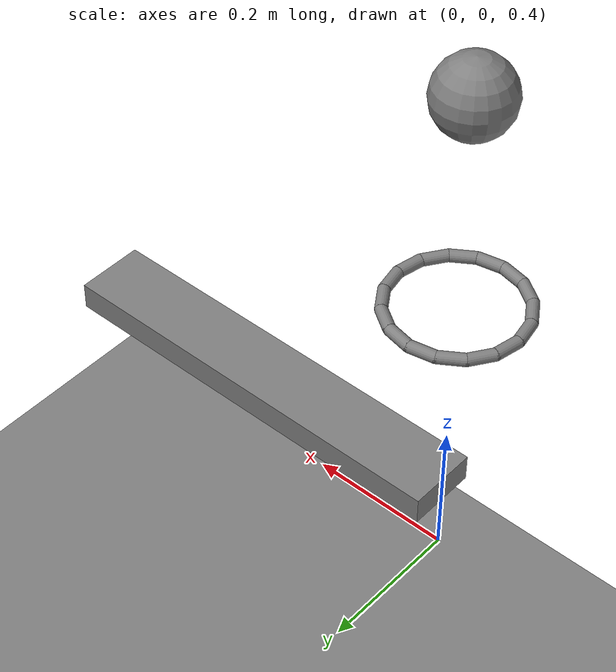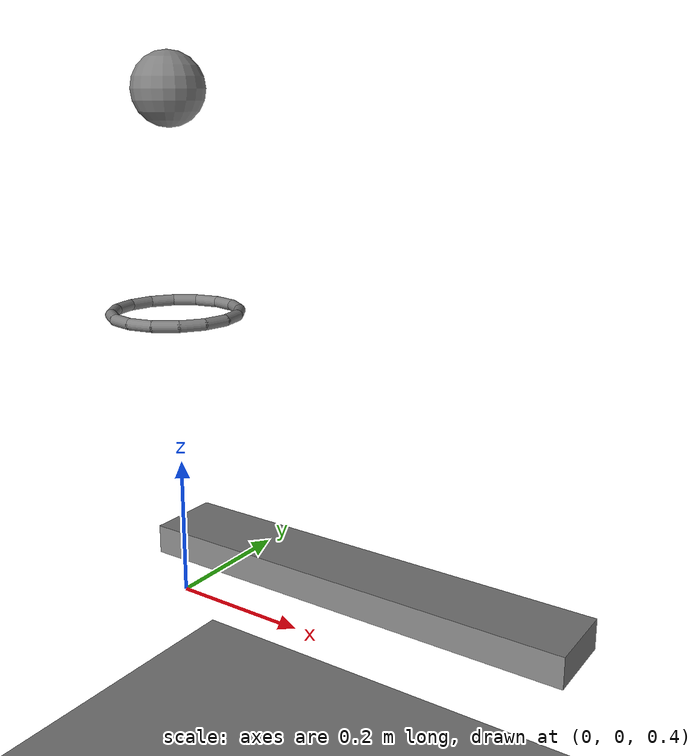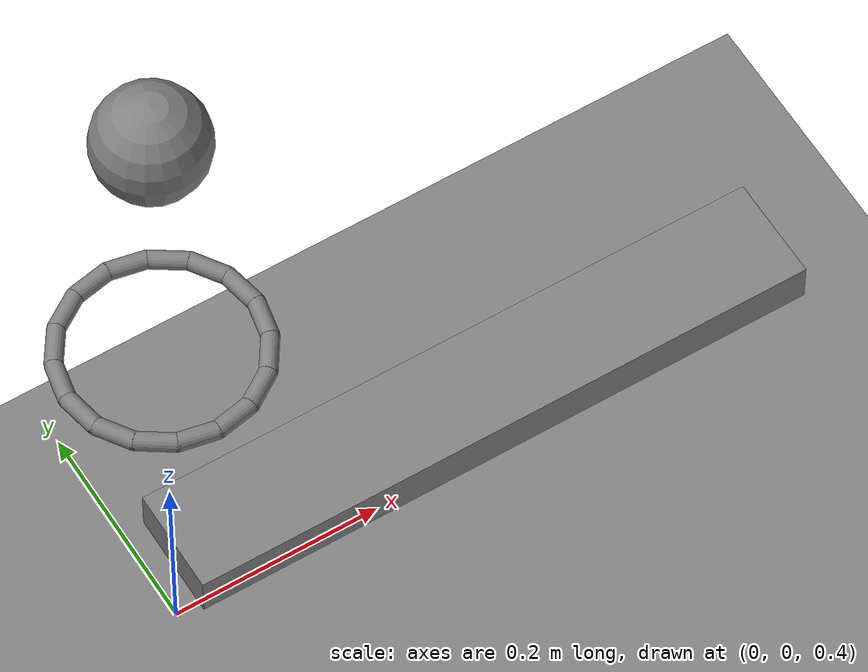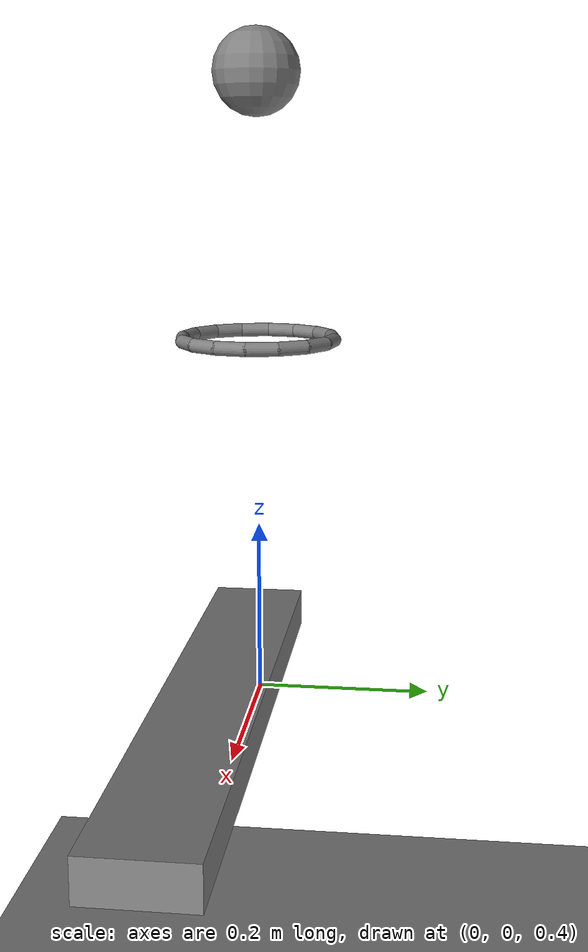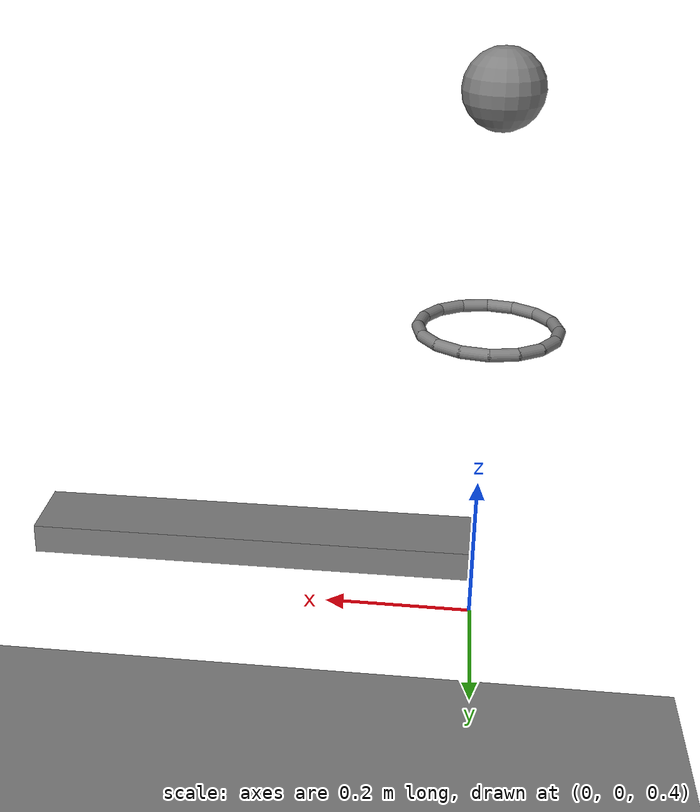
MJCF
<mujoco model="vertical_drop_through_ring_onto_lever">
  <compiler angle="radian"/>
  <option timestep="0.002"/>
  <worldbody>
    <geom name="floor" type="plane" size="6 6 0.1" friction="0.72 0.005 0.0001"/>
    <body name="lever1" pos="0.3 0 0.5">
      <joint name="lever1_hinge" type="hinge" pos="0 0 0" axis="0 1 0" damping="0.04"/>
      <geom name="lever1" type="box" pos="0 0 0" size="0.3 0.05 0.02" mass="0.5" friction="0.72 0.005 0.0001" solref="0.01 1"/>
    </body>
    <body name="ring1">
      <geom name="ring1_00" type="capsule" size="0.008" fromto="0.088 0 0.82 0.0813014 0.0336761 0.82" friction="0.72 0.005 0.0001" solref="0.01 1"/>
      <geom name="ring1_01" type="capsule" size="0.008" fromto="0.0813014 0.0336761 0.82 0.0622254 0.0622254 0.82" friction="0.72 0.005 0.0001" solref="0.01 1"/>
      <geom name="ring1_02" type="capsule" size="0.008" fromto="0.0622254 0.0622254 0.82 0.0336761 0.0813014 0.82" friction="0.72 0.005 0.0001" solref="0.01 1"/>
      <geom name="ring1_03" type="capsule" size="0.008" fromto="0.0336761 0.0813014 0.82 5.38845e-18 0.088 0.82" friction="0.72 0.005 0.0001" solref="0.01 1"/>
      <geom name="ring1_04" type="capsule" size="0.008" fromto="5.38845e-18 0.088 0.82 -0.0336761 0.0813014 0.82" friction="0.72 0.005 0.0001" solref="0.01 1"/>
      <geom name="ring1_05" type="capsule" size="0.008" fromto="-0.0336761 0.0813014 0.82 -0.0622254 0.0622254 0.82" friction="0.72 0.005 0.0001" solref="0.01 1"/>
      <geom name="ring1_06" type="capsule" size="0.008" fromto="-0.0622254 0.0622254 0.82 -0.0813014 0.0336761 0.82" friction="0.72 0.005 0.0001" solref="0.01 1"/>
      <geom name="ring1_07" type="capsule" size="0.008" fromto="-0.0813014 0.0336761 0.82 -0.088 1.07769e-17 0.82" friction="0.72 0.005 0.0001" solref="0.01 1"/>
      <geom name="ring1_08" type="capsule" size="0.008" fromto="-0.088 1.07769e-17 0.82 -0.0813014 -0.0336761 0.82" friction="0.72 0.005 0.0001" solref="0.01 1"/>
      <geom name="ring1_09" type="capsule" size="0.008" fromto="-0.0813014 -0.0336761 0.82 -0.0622254 -0.0622254 0.82" friction="0.72 0.005 0.0001" solref="0.01 1"/>
      <geom name="ring1_10" type="capsule" size="0.008" fromto="-0.0622254 -0.0622254 0.82 -0.0336761 -0.0813014 0.82" friction="0.72 0.005 0.0001" solref="0.01 1"/>
      <geom name="ring1_11" type="capsule" size="0.008" fromto="-0.0336761 -0.0813014 0.82 -1.61653e-17 -0.088 0.82" friction="0.72 0.005 0.0001" solref="0.01 1"/>
      <geom name="ring1_12" type="capsule" size="0.008" fromto="-1.61653e-17 -0.088 0.82 0.0336761 -0.0813014 0.82" friction="0.72 0.005 0.0001" solref="0.01 1"/>
      <geom name="ring1_13" type="capsule" size="0.008" fromto="0.0336761 -0.0813014 0.82 0.0622254 -0.0622254 0.82" friction="0.72 0.005 0.0001" solref="0.01 1"/>
      <geom name="ring1_14" type="capsule" size="0.008" fromto="0.0622254 -0.0622254 0.82 0.0813014 -0.0336761 0.82" friction="0.72 0.005 0.0001" solref="0.01 1"/>
      <geom name="ring1_15" type="capsule" size="0.008" fromto="0.0813014 -0.0336761 0.82 0.088 -2.15538e-17 0.82" friction="0.72 0.005 0.0001" solref="0.01 1"/>
    </body>
    <body name="ball1" pos="0 0 1.12">
      <freejoint/>
      <geom name="ball1" type="sphere" pos="0 0 0" size="0.05" mass="0.2" condim="6" friction="0.72 0.005 0.0001" solref="0.01 1"/>
    </body>
  </worldbody>
  <keyframe>
    <key name="start" qpos="0 0 0 1.12 1 0 0 0" qvel="0 0 0 0 0 0 0"/>
  </keyframe>
</mujoco>
